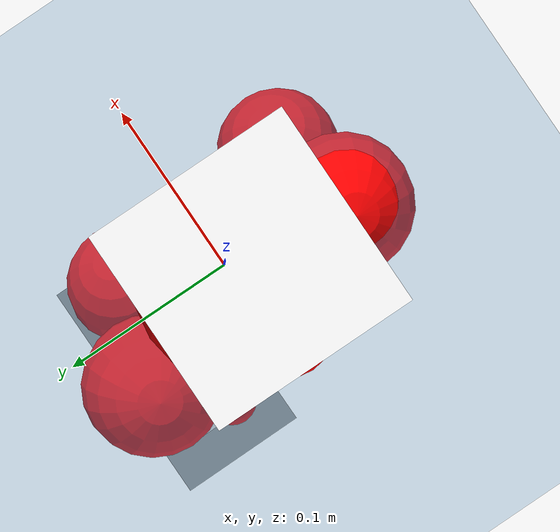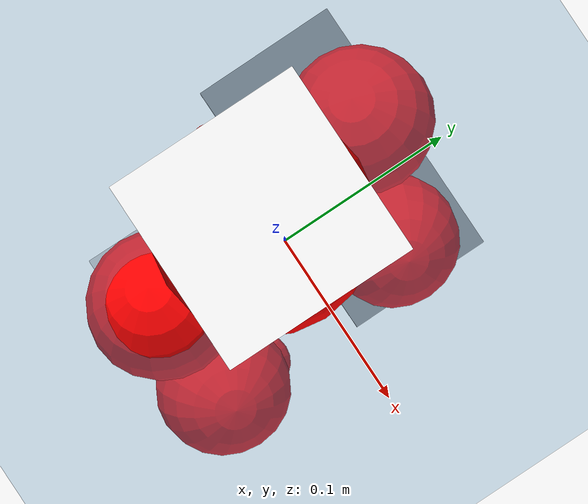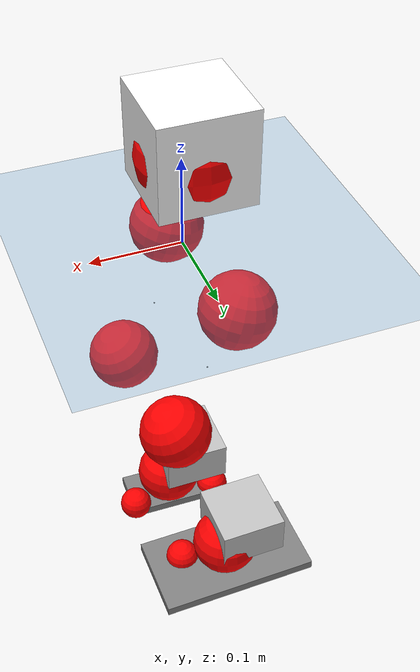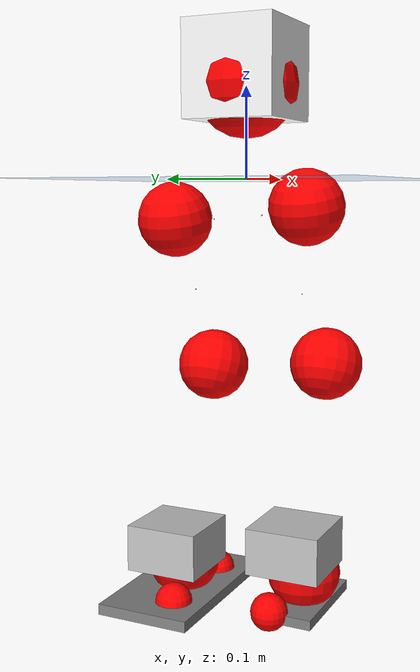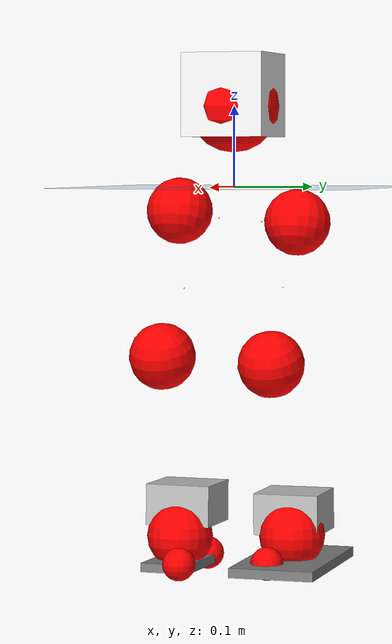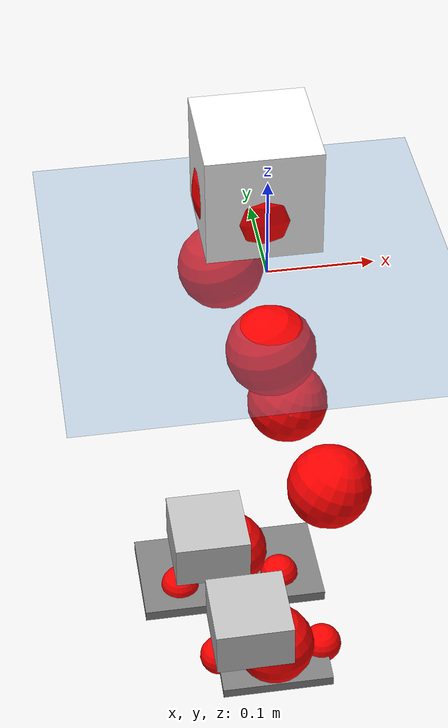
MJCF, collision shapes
<mujoco model="pi_12dof_release_v1">
  <compiler angle="radian" assetdir="assets" balanceinertia="true" inertiafromgeom="false"/>

  <option timestep="0.005" density="1.2" viscosity="2e-05"/>

  <size nkey="1"/>

  <visual>
    <quality shadowsize="8192"/>
    <map shadowclip="0.5"/>
  </visual>

  <default>
    <default class="/">
      <joint armature="0.01" damping="0.01" frictionloss="0.01"/>
      <geom contype="0" conaffinity="0" group="1" solref="-1000 -80"/>
      <site size="0.01 0.005 0.005" group="5"/>
      <general forcelimited="true" biastype="affine" gainprm="20" biasprm="0 -20 -0.5"/>
      <default class="foot">
        <geom size="0.0845 0.036 0.005" type="box" condim="6" group="4" priority="1" friction="0.9 0.2 0.2" solimp="0.015 1 0.005"/>
      </default>
      <default class="reward_collision_sphere">
        <geom group="5" rgba="1 0 0 1"/>
      </default>
    </default>
  </default>

  <asset>
    <texture type="skybox" colorspace="auto" name="//unnamed_texture_0" builtin="gradient" rgb1="0.95 0.95 0.95" rgb2="0.95 0.95 0.95" width="100" height="600"/>
    <texture type="2d" colorspace="auto" name="texplane" builtin="checker" rgb1="0.345 0.575 0.748" rgb2="0.345 0.575 0.748" markrgb="1 1 1" width="512" height="512"/>
    <material name="MatPlane" class="/" texture="texplane" texuniform="true" texrepeat="2 2" specular="0.9"/>
    <mesh name="baselink_1" class="/" file="baselink_1.STL"/>
    <mesh name="r_hip_pitch_link" class="/" file="r_hip_pitch_link.STL"/>
    <mesh name="r_hip_roll_link" class="/" file="r_hip_roll_link.STL"/>
    <mesh name="r_thigh_link" class="/" file="r_thigh_link.STL"/>
    <mesh name="r_calf_link" class="/" file="r_calf_link.STL"/>
    <mesh name="r_ankle_pitch_link" class="/" file="r_ankle_pitch_link.STL"/>
    <mesh name="r_ankle_roll_link" class="/" file="r_ankle_roll_link.STL"/>
    <mesh name="l_hip_pitch_link" class="/" file="l_hip_pitch_link.STL"/>
    <mesh name="l_hip_roll_link" class="/" file="l_hip_roll_link.STL"/>
    <mesh name="l_thigh_link" class="/" file="l_thigh_link.STL"/>
    <mesh name="l_calf_link" class="/" file="l_calf_link.STL"/>
    <mesh name="l_ankle_pitch_link" class="/" file="l_ankle_pitch_link.STL"/>
    <mesh name="l_ankle_roll_link" class="/" file="l_ankle_roll_link.STL"/>
  </asset>

  <worldbody>
    <geom name="floor" class="/" size="100 100 0.125" type="plane" group="0" material="MatPlane"/>
    <light name="toplight_shadow" class="/" pos="0 0 5" dir="0.0990148 0.0990148 -0.990148" type="directional" ambient="0.04 0.04 0.04" diffuse="0.55 0.55 0.55" specular="0.12 0.12 0.12"/>
    <light name="toplight_fill" class="/" pos="0 0 5" dir="0.0990148 0.0990148 -0.990148" type="directional" castshadow="false" ambient="0.04 0.04 0.04" diffuse="0.3 0.3 0.3" specular="0.08 0.08 0.08"/>
    <body name="trunk" pos="-0.0115934 -0.00488508 0.000128851" quat="0.999999 0.000886794 -0.000783574 -0.000779809">
      <inertial pos="0.00198227 -0.000192442 0.0582831" quat="0.695506 0.0426505 0.0152188 0.717092" mass="2.41985" diaginertia="0.0026464 0.00356646 0.0233173"/>
      <joint name="//unnamed_joint_0" type="free"/>
      <geom name="//unnamed_geom_1" class="/" type="mesh" density="0" rgba="1 1 1 1" mesh="baselink_1"/>
      <geom name="//unnamed_geom_2" class="/" size="0.051833 0.051833 0.051833" pos="0 0 0.113616" type="box" rgba="1 1 1 1"/>
      <geom name="//unnamed_geom_3" class="reward_collision_sphere" size="0.0570163" pos="0 0 0.0994137"/>
      <site name="imu" class="/" pos="-0.0164667 0.00615964 0.065512" size="0.0103666"/>
      <camera name="track" class="/" pos="0 -1.74483 0" quat="0.707107 0.707107 0 0" mode="trackcom"/>
      <camera name="ego_camera" class="/" pos="0.0613029 0 0.255635" quat="-0.5 -0.5 0.5 0.5"/>
      <body name="r_hip_pitch_link" pos="-0.00320183 -0.0203429 -0.039686" quat="0.992004 -0.00502683 -0.126102 0.00103406">
        <inertial pos="0.0132699 -0.0432115 -0.000367575" quat="-0.012685 0.705712 -0.0289219 0.707795" mass="0.421939" diaginertia="4.04756e-05 5.47612e-05 0.000482497"/>
        <joint name="r_hip_pitch_joint" class="/" pos="0 0 0" axis="-0.0454378 -0.99868 0.0239447" stiffness="0.00341179" range="-1.99825 1.084" armature="0.0102742" damping="0" frictionloss="0.010517"/>
        <geom name="//unnamed_geom_4" class="/" type="mesh" density="0" rgba="0.75294 0.75294 0.75294 1" mesh="r_hip_pitch_link"/>
        <geom name="//unnamed_geom_5" class="/" size="0.00051833 0.00051833 0.00051833" type="box" rgba="0.75294 0.75294 0.75294 1"/>
        <body name="r_hip_roll_link" pos="0.00815633 -0.0496083 0.00676009" quat="0.999996 -0.00247283 -8.95856e-05 -0.001044">
          <inertial pos="-0.000141235 -0.00260182 -0.0727763" quat="0.690924 -0.0962276 -0.0701416 0.713052" mass="0.457394" diaginertia="0.00012958 0.000148643 0.000774077"/>
          <joint name="r_hip_roll_joint" class="/" pos="0 0 0" axis="-0.9986 -0.0443093 -0.0288857" stiffness="0.00809033" range="-0.136526 0.269363" armature="0.00727167" damping="0.0346014" frictionloss="0.015061"/>
          <geom name="//unnamed_geom_6" class="/" type="mesh" density="0" rgba="0.75294 0.75294 0.75294 1" mesh="r_hip_roll_link"/>
          <geom name="//unnamed_geom_7" class="/" size="0.00051833 0.00051833 0.00051833" type="box" rgba="0.75294 0.75294 0.75294 1"/>
          <geom name="//unnamed_geom_8" class="reward_collision_sphere" size="0.0414664"/>
          <body name="r_thigh_link" pos="-0.00303068 0.0141001 -0.0982553" quat="0.99999 0.00331293 -0.00199354 -0.00221109">
            <inertial pos="-0.00600137 0.00363158 -0.0683417" quat="0.7729 0.633837 0.0246963 -0.0163477" mass="0.102972" diaginertia="4.6212e-05 4.40202e-05 0.000343752"/>
            <joint name="r_thigh_joint" class="/" pos="0 0 0" axis="0.0296922 -0.0203331 -0.999352" stiffness="0.0655952" range="-0.480358 0.3348" armature="0.010947" damping="0.00636831" frictionloss="0.01339"/>
            <geom name="//unnamed_geom_9" class="/" type="mesh" density="0" rgba="0.75294 0.75294 0.75294 1" mesh="r_thigh_link"/>
            <geom name="//unnamed_geom_10" class="/" size="0.00051833 0.00051833 0.00051833" type="box" rgba="0.75294 0.75294 0.75294 1"/>
            <body name="r_calf_link" pos="0.0136985 -0.0155861 -0.0894395" quat="0.947661 -0.000138754 0.319279 0.000156114">
              <inertial pos="-0.0135851 -0.00423515 -0.0868883" quat="0.999303 -0.0213042 -0.0249383 -0.0178344" mass="0.748369" diaginertia="0.00107714 0.00163769 0.000840657"/>
              <joint name="r_calf_joint" class="/" pos="0 0 0" axis="0.0203937 -0.998089 0.0583247" stiffness="0.030294" range="-1.64652 0.632808" armature="0.00735782" damping="0.014721" frictionloss="0.0112251"/>
              <geom name="//unnamed_geom_11" class="/" type="mesh" density="0" rgba="0.75294 0.75294 0.75294 1" mesh="r_calf_link"/>
              <geom name="//unnamed_geom_12" class="/" size="0.00051833 0.00051833 0.00051833" type="box" rgba="0.75294 0.75294 0.75294 1"/>
              <geom name="//unnamed_geom_13" class="reward_collision_sphere" size="0.0414664"/>
              <body name="r_ankle_pitch_link" pos="0.00174685 0.00705527 -0.206302" quat="0.98007 -3.70666e-06 -0.198654 -3.11117e-07">
                <inertial pos="0.0102665 -0.0114724 -0.00327754" quat="-4.773e-05 0.704751 0.000749743 0.709454" mass="0.186856" diaginertia="0.000110258 0.000104212 0.000656951"/>
                <joint name="r_ankle_pitch_joint" class="/" pos="0 0 0" axis="-0.0407787 -0.999152 -0.00562731" range="-1.40661 0.517967" armature="0.0154151" damping="0" frictionloss="0.0150017"/>
                <geom name="//unnamed_geom_14" class="/" type="mesh" density="0" rgba="0.75294 0.75294 0.75294 1" mesh="r_ankle_pitch_link"/>
                <geom name="//unnamed_geom_15" class="/" size="0.0404298 0.0414664 0.0259165" type="box" rgba="0.75294 0.75294 0.75294 1"/>
                <body name="r_ankle_roll_link" pos="0.0668648 -0.00107077 -0.0108732" quat="0.999977 0.00190004 -0.00317673 -0.0056145">
                  <inertial pos="-0.0341265 0.00834424 -0.031166" quat="0.560282 0.425249 0.430253 0.5658" mass="0.667131" diaginertia="0.000386765 0.000457745 0.00138574"/>
                  <joint name="r_ankle_roll_joint" class="/" pos="0 0 0" axis="-0.997706 -0.0634482 0.0236114" stiffness="0.0377621" range="-0.133835 0.181347" armature="0.00883599" damping="0" frictionloss="0.0111571"/>
                  <geom name="//unnamed_geom_16" class="/" type="mesh" density="0" rgba="0.75294 0.75294 0.75294 1" mesh="r_ankle_roll_link"/>
                  <geom name="//unnamed_geom_17" class="/" type="mesh" rgba="0.75294 0.75294 0.75294 1" mesh="r_ankle_roll_link"/>
                  <geom name="right_foot" class="foot" size="0.0584608 0.0314423 0.00560884" pos="-0.041686 0 -0.0624886"/>
                  <geom name="//unnamed_geom_19" class="reward_collision_sphere" size="0.0414664" pos="-0.0408686 0 -0.0284039"/>
                  <geom name="//unnamed_geom_20" class="reward_collision_sphere" size="0.0207332" pos="0.0122606 0.0174483 -0.0568079"/>
                  <geom name="//unnamed_geom_21" class="reward_collision_sphere" size="0.0207332" pos="-0.0980846 0.0174483 -0.0568079"/>
                  <site name="right_foot" class="foot" pos="-0.041686 0 -0.0624886" size="0.0103666"/>
                </body>
              </body>
            </body>
          </body>
        </body>
      </body>
      <body name="l_hip_pitch_link" pos="-0.0149237 0.0317209 -0.0441418" quat="0.992257 0.00159614 -0.124189 0.00073643">
        <inertial pos="-0.0120294 0.0617967 0.000484523" quat="-0.0327943 0.689949 0.0815855 0.718497" mass="0.459679" diaginertia="4.79099e-05 5.29237e-05 0.00065092"/>
        <joint name="l_hip_pitch_joint" class="/" pos="0 0 0" axis="-0.0640356 0.99739 -0.033364" stiffness="0.0585154" range="-1.00307 1.72977" armature="0.0167459" damping="0" frictionloss="0.00718641"/>
        <geom name="//unnamed_geom_22" class="/" type="mesh" density="0" rgba="0.75294 0.75294 0.75294 1" mesh="l_hip_pitch_link"/>
        <geom name="//unnamed_geom_23" class="/" size="0.00051833 0.00051833 0.00051833" type="box" rgba="0.75294 0.75294 0.75294 1"/>
        <body name="l_hip_roll_link" pos="-0.00679388 0.044738 0.000951679" quat="0.999997 -0.00132922 -0.000833716 -0.00169105">
          <inertial pos="-0.003977 -0.0128281 -0.0864391" quat="0.705192 -0.12141 -0.0831823 0.693574" mass="0.372325" diaginertia="0.000119222 0.000124537 0.000773568"/>
          <joint name="l_hip_roll_joint" class="/" pos="0 0 0" axis="-0.999444 0.0215681 0.0254414" stiffness="0.0383186" range="-0.480922 -0.0072292" armature="0.00440943" damping="0.0399137" frictionloss="0.0140922"/>
          <geom name="//unnamed_geom_24" class="/" type="mesh" density="0" rgba="0.75294 0.75294 0.75294 1" mesh="l_hip_roll_link"/>
          <geom name="//unnamed_geom_25" class="/" size="0.00051833 0.00051833 0.00051833" type="box" rgba="0.75294 0.75294 0.75294 1"/>
          <geom name="//unnamed_geom_26" class="reward_collision_sphere" size="0.0414664"/>
          <body name="l_thigh_link" pos="0.00806966 -0.0103489 -0.0845919" quat="0.999976 0.00350059 0.00565672 0.00209826">
            <inertial pos="-0.000449942 -0.000371872 -0.0823163" quat="0.657305 0.753237 0.0179457 -0.0161901" mass="0.146667" diaginertia="4.58537e-05 5.20546e-05 0.000343092"/>
            <joint name="l_thigh_joint" class="/" pos="0 0 0" axis="0.0136459 -0.0162293 -0.999775" range="-0.347494 0.297037" armature="0.0104587" damping="0.0487511" frictionloss="0.0100781"/>
            <geom name="//unnamed_geom_27" class="/" type="mesh" density="0" rgba="0.75294 0.75294 0.75294 1" mesh="l_thigh_link"/>
            <geom name="//unnamed_geom_28" class="/" size="0.00051833 0.00051833 0.00051833" type="box" rgba="0.75294 0.75294 0.75294 1"/>
            <body name="l_calf_link" pos="0.0128728 -0.00524628 -0.0988939" quat="0.947854 -0.0017296 0.318697 0.00117881">
              <inertial pos="-0.00892256 -0.00330963 -0.101603" quat="0.998165 -0.041588 -0.0371298 -0.0236257" mass="0.93222" diaginertia="0.00119699 0.00162593 0.000931965"/>
              <joint name="l_calf_joint" class="/" pos="0 0 0" axis="0.0462341 0.998391 0.0328405" range="-0.823907 1.55396" armature="0.0114559" damping="0.00653704" frictionloss="0.0158835"/>
              <geom name="//unnamed_geom_29" class="/" type="mesh" density="0" rgba="0.75294 0.75294 0.75294 1" mesh="l_calf_link"/>
              <geom name="//unnamed_geom_30" class="/" size="0.00051833 0.00051833 0.00051833" type="box" rgba="0.75294 0.75294 0.75294 1"/>
              <geom name="//unnamed_geom_31" class="reward_collision_sphere" size="0.0414664"/>
              <body name="l_ankle_pitch_link" pos="-0.000906038 0.00436186 -0.210358" quat="0.980231 -0.00210647 -0.197845 -0.000601933">
                <inertial pos="0.00085073 -0.000799625 -0.00372696" quat="0.0541885 0.735237 0.00369642 0.67563" mass="0.205879" diaginertia="0.000113202 9.86935e-05 0.000577016"/>
                <joint name="l_ankle_pitch_joint" class="/" pos="0 0 0" axis="0.00986025 0.999769 -0.0190824" range="-0.674351 1.14247" armature="0.012301" damping="0.0506231" frictionloss="0.00927935"/>
                <geom name="//unnamed_geom_32" class="/" type="mesh" density="0" rgba="0.75294 0.75294 0.75294 1" mesh="l_ankle_pitch_link"/>
                <geom name="//unnamed_geom_33" class="/" size="0.0404298 0.0414664 0.0259165" type="box" rgba="0.75294 0.75294 0.75294 1"/>
                <body name="l_ankle_roll_link" pos="0.0648152 0.00441705 0.00144355" quat="1 -0.000474476 -0.000146265 0.000491181">
                  <inertial pos="-0.00808651 0.0136623 -0.0331995" quat="0.55994 0.430752 0.434426 0.558743" mass="0.503757" diaginertia="0.000459349 0.000452338 0.00167221"/>
                  <joint name="l_ankle_roll_joint" class="/" pos="0 0 0" axis="-0.99983 0.00641842 -0.0173056" range="-0.207864 0.309672" armature="0.00964449" damping="0" frictionloss="0.00447547"/>
                  <geom name="//unnamed_geom_34" class="/" type="mesh" density="0" rgba="0.75294 0.75294 0.75294 1" mesh="l_ankle_roll_link"/>
                  <geom name="//unnamed_geom_35" class="/" type="mesh" rgba="0.75294 0.75294 0.75294 1" mesh="l_ankle_roll_link"/>
                  <geom name="left_foot" class="foot" size="0.098839 0.0536201 0.00606159" pos="-0.041686 0 -0.0624886"/>
                  <geom name="//unnamed_geom_37" class="reward_collision_sphere" size="0.0414664" pos="-0.0408686 0 -0.0284039"/>
                  <geom name="//unnamed_geom_38" class="reward_collision_sphere" size="0.0207332" pos="0.0122606 -0.0174483 -0.0568079"/>
                  <geom name="//unnamed_geom_39" class="reward_collision_sphere" size="0.0207332" pos="-0.0980846 -0.0174483 -0.0568079"/>
                  <site name="left_foot" class="foot" pos="-0.041686 0 -0.0624886" size="0.0103666"/>
                </body>
              </body>
            </body>
          </body>
        </body>
      </body>
    </body>
  </worldbody>

  <contact>
    <pair class="/" geom1="floor" geom2="right_foot" name="//unnamed_contact_1"/>
    <pair class="/" geom1="floor" geom2="left_foot" name="//unnamed_contact_0"/>
  </contact>

  <actuator>
    <general name="r_hip_pitch_joint" class="/" joint="r_hip_pitch_joint" forcerange="-17.2233 17.2233" gainprm="20.4084" biasprm="0 -20.4084 -0.553689"/>
    <general name="r_hip_roll_joint" class="/" joint="r_hip_roll_joint" forcerange="-11.9788 11.9788" gainprm="20.4084" biasprm="0 -20.4084 -0.553689"/>
    <general name="r_thigh_joint" class="/" joint="r_thigh_joint" forcerange="-25.7688 25.7688" gainprm="20.4084" biasprm="0 -20.4084 -0.553689"/>
    <general name="r_calf_joint" class="/" joint="r_calf_joint" forcerange="-10.8749 10.8749" gainprm="20.4084" biasprm="0 -20.4084 -0.553689"/>
    <general name="r_ankle_pitch_joint" class="/" joint="r_ankle_pitch_joint" forcerange="-24.2936 24.2936" gainprm="20.4084" biasprm="0 -20.4084 -0.553689"/>
    <general name="r_ankle_roll_joint" class="/" joint="r_ankle_roll_joint" forcerange="-18.6893 18.6893" gainprm="20.4084" biasprm="0 -20.4084 -0.553689"/>
    <general name="l_hip_pitch_joint" class="/" joint="l_hip_pitch_joint" forcerange="-22.4849 22.4849" gainprm="20.4084" biasprm="0 -20.4084 -0.553689"/>
    <general name="l_hip_roll_joint" class="/" joint="l_hip_roll_joint" forcerange="-30.5103 30.5103" gainprm="20.4084" biasprm="0 -20.4084 -0.553689"/>
    <general name="l_thigh_joint" class="/" joint="l_thigh_joint" forcerange="-17.4116 17.4116" gainprm="20.4084" biasprm="0 -20.4084 -0.553689"/>
    <general name="l_calf_joint" class="/" joint="l_calf_joint" forcerange="-22.3698 22.3698" gainprm="20.4084" biasprm="0 -20.4084 -0.553689"/>
    <general name="l_ankle_pitch_joint" class="/" joint="l_ankle_pitch_joint" forcerange="-20.9389 20.9389" gainprm="20.4084" biasprm="0 -20.4084 -0.553689"/>
    <general name="l_ankle_roll_joint" class="/" joint="l_ankle_roll_joint" forcerange="-15.693 15.693" gainprm="20.4084" biasprm="0 -20.4084 -0.553689"/>
  </actuator>

  <sensor>
    <gyro site="imu" name="imu_angular_velocity"/>
    <velocimeter site="imu" name="imu_linear_velocity"/>
    <framelinvel objtype="site" objname="left_foot" name="left_foot_global_linear_velocity"/>
    <framelinvel objtype="site" objname="right_foot" name="right_foot_global_linear_velocity"/>
  </sensor>

  <keyframe>
    <key name="home" qpos="0 0 0.291 1 0 0 0 0.4 0 0 -0.8 0.4 0 -0.4 0 0 0.8 -0.4 0"/>
  </keyframe>
</mujoco>
